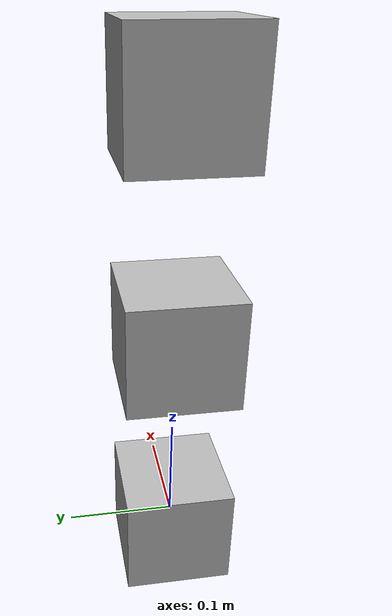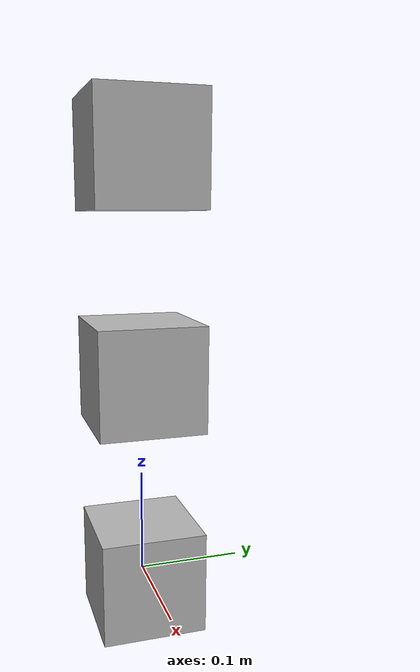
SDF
<?xml version='1.0' encoding='utf-8'?>
<sdf version="1.7">
  <model name="graph_chain_non_canonical_root">
    <link name="graph_chain_non_canonical_root_link_1">
      <pose>0 0 0 0 0 0</pose>
      <visual name="graph_chain_non_canonical_root_link_1_visual">
        <geometry>
          <box>
            <size>0.1 0.1 0.1</size>
          </box>
        </geometry>
      </visual>
      <collision name="graph_chain_non_canonical_root_link_1_collision">
        <geometry>
          <box>
            <size>0.1 0.1 0.1</size>
          </box>
        </geometry>
      </collision>
      <inertial>
        <mass>1.23</mass>
        <inertia>
          <ixx>0.00205</ixx>
          <ixy>0</ixy>
          <ixz>0</ixz>
          <iyy>0.00205</iyy>
          <iyz>0</iyz>
          <izz>0.00205</izz>
        </inertia>
      </inertial>
    </link>
    <link name="graph_chain_non_canonical_root_link_2">
      <pose>0 0 0.2 0 0 0</pose>
      <visual name="graph_chain_non_canonical_root_link_2_visual">
        <geometry>
          <box>
            <size>0.1 0.1 0.1</size>
          </box>
        </geometry>
      </visual>
      <collision name="graph_chain_non_canonical_root_link_2_collision">
        <geometry>
          <box>
            <size>0.1 0.1 0.1</size>
          </box>
        </geometry>
      </collision>
      <inertial>
        <mass>1.23</mass>
        <inertia>
          <ixx>0.00205</ixx>
          <ixy>0</ixy>
          <ixz>0</ixz>
          <iyy>0.00205</iyy>
          <iyz>0</iyz>
          <izz>0.00205</izz>
        </inertia>
      </inertial>
    </link>
    <link name="graph_chain_non_canonical_root_link_3">
      <pose>0 0 0.4 0 0 0</pose>
      <visual name="graph_chain_non_canonical_root_link_3_visual">
        <geometry>
          <box>
            <size>0.1 0.1 0.1</size>
          </box>
        </geometry>
      </visual>
      <collision name="graph_chain_non_canonical_root_link_3_collision">
        <geometry>
          <box>
            <size>0.1 0.1 0.1</size>
          </box>
        </geometry>
      </collision>
      <inertial>
        <mass>1.23</mass>
        <inertia>
          <ixx>0.00205</ixx>
          <ixy>0</ixy>
          <ixz>0</ixz>
          <iyy>0.00205</iyy>
          <iyz>0</iyz>
          <izz>0.00205</izz>
        </inertia>
      </inertial>
    </link>
    <joint name="joint_1" type="revolute">
      <parent>graph_chain_non_canonical_root_link_2</parent>
      <child>graph_chain_non_canonical_root_link_1</child>
      <axis>
        <xyz>1 0 0</xyz>
      </axis>
    </joint>
    <joint name="joint_2" type="revolute">
      <parent>graph_chain_non_canonical_root_link_3</parent>
      <child>graph_chain_non_canonical_root_link_2</child>
      <axis>
        <xyz>1 0 0</xyz>
      </axis>
    </joint>
  </model>
</sdf>
